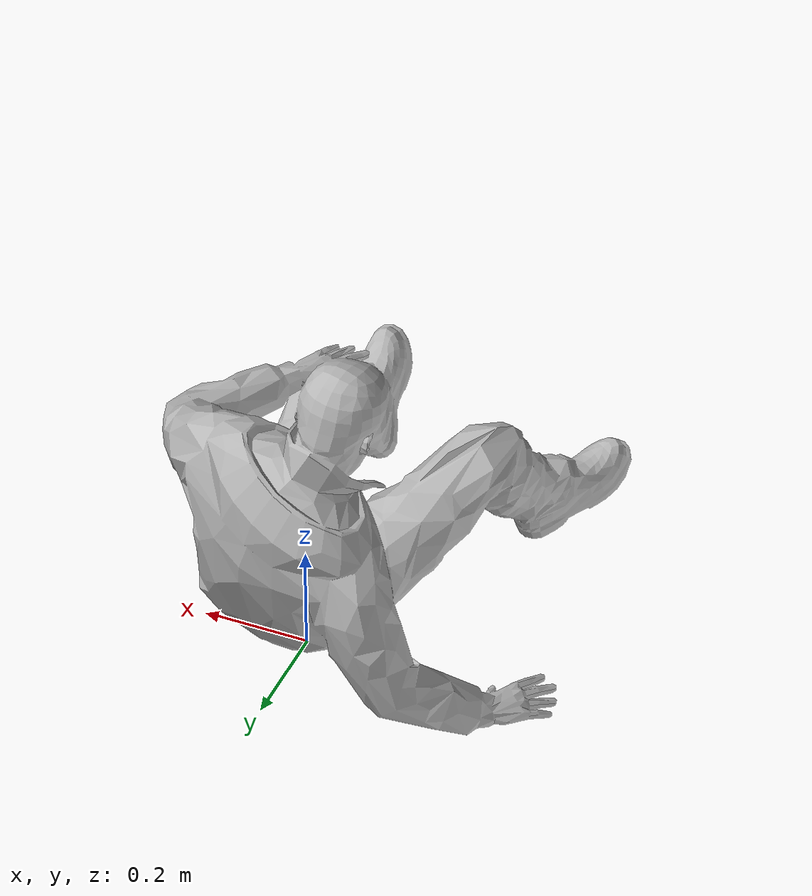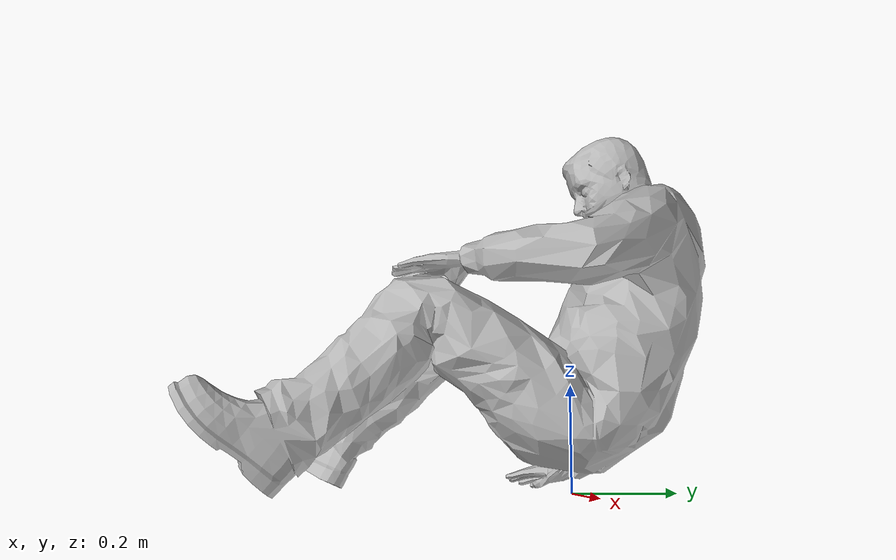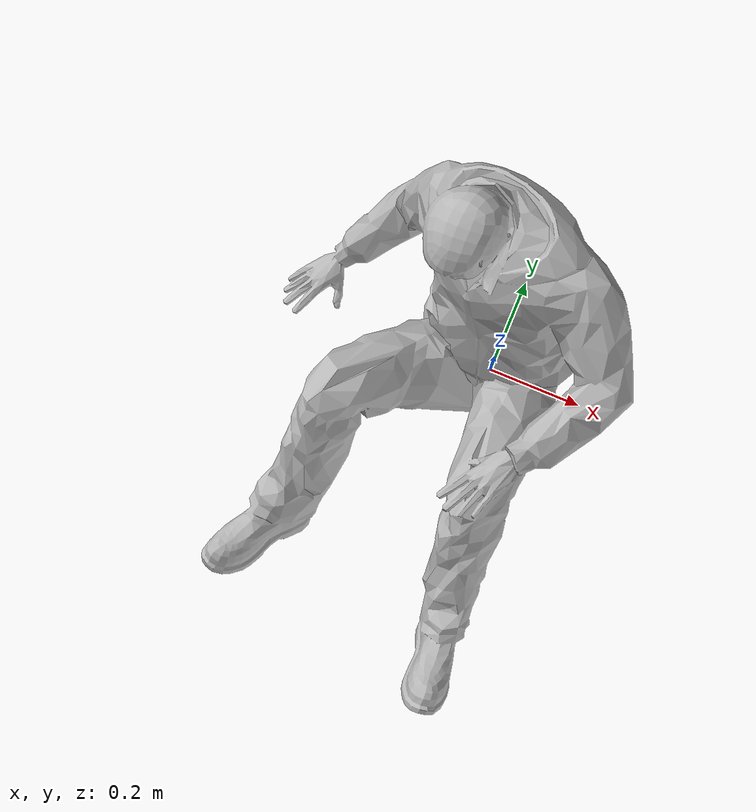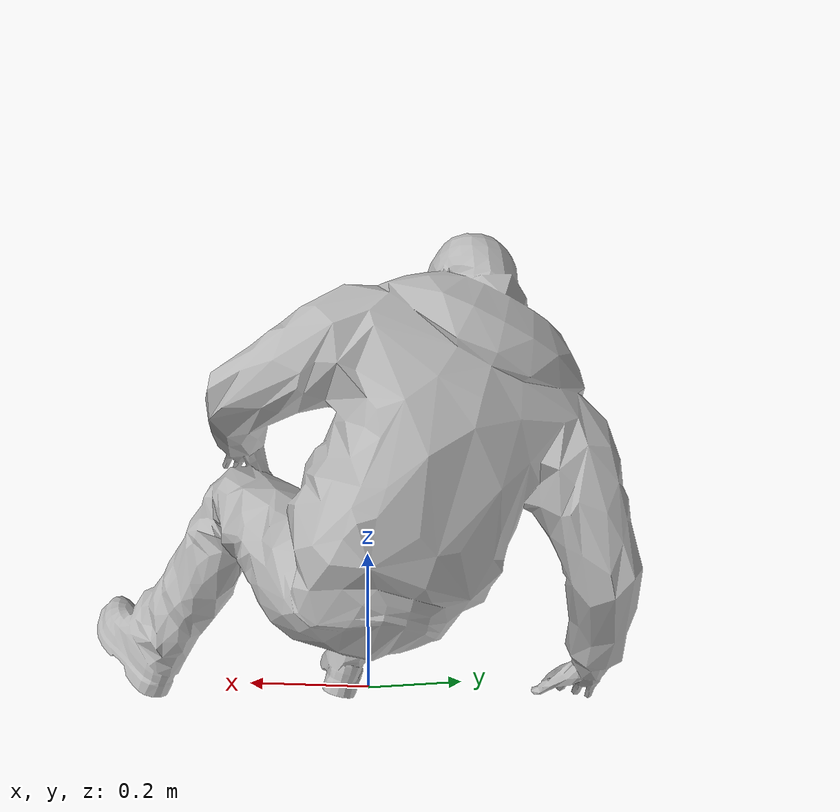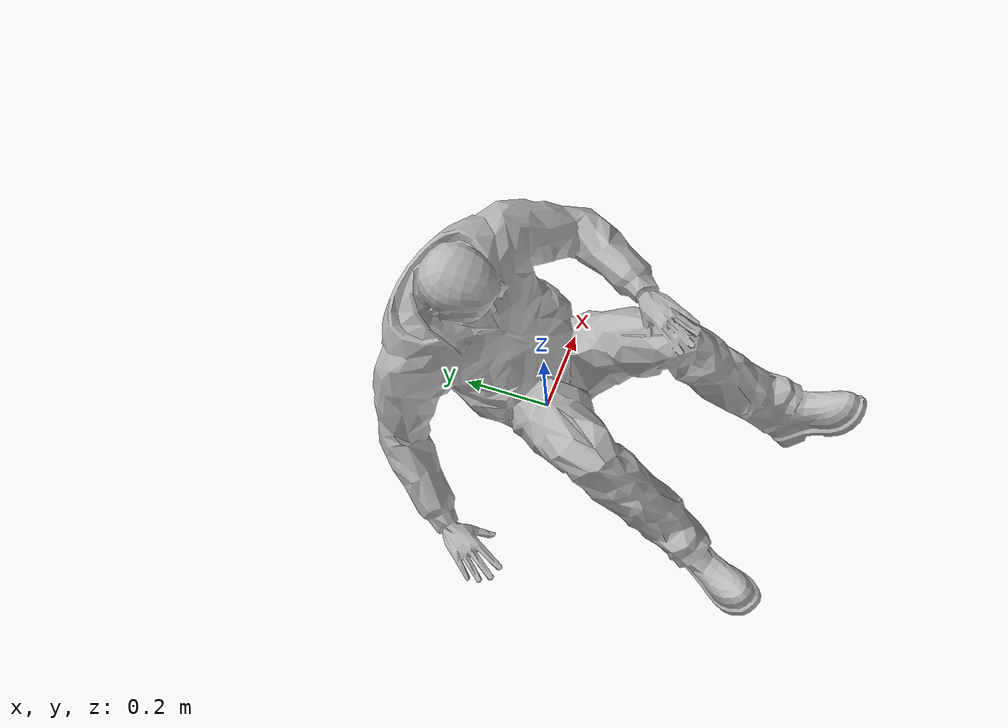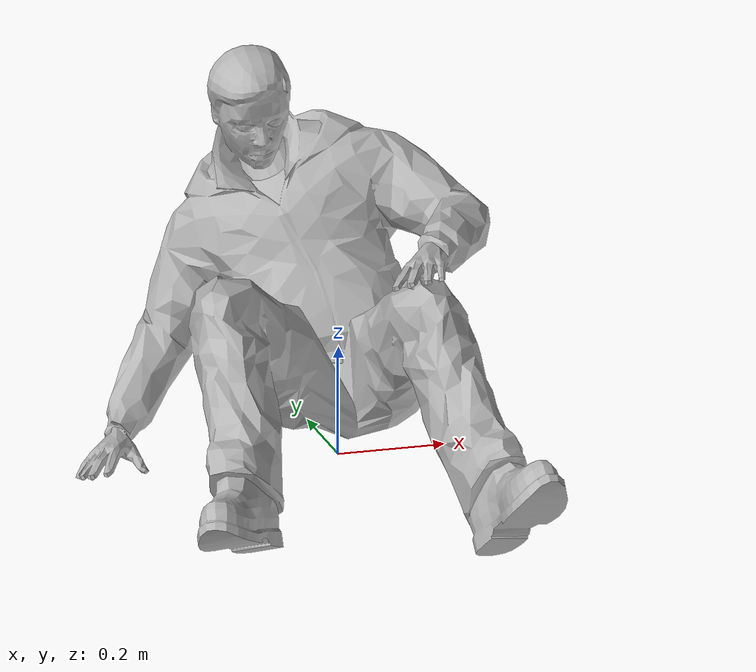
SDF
<?xml version="1.0" ?>
<sdf version="1.6">
  <model name="survivor">
    <static>true</static>
    <link name="link">
      <pose>0 0 -0.623996 0 0 0</pose>
      <collision name="collision">
        <geometry>
          <mesh>
            <uri>model://survivor/meshes/rescue_randy.dae</uri>
          </mesh>
        </geometry>
      </collision>
      <visual name="visual">
        <geometry>
          <mesh>
            <uri>model://survivor/meshes/rescue_randy.dae</uri>
          </mesh>
        </geometry>
      </visual>
    </link>
  </model>
</sdf>
